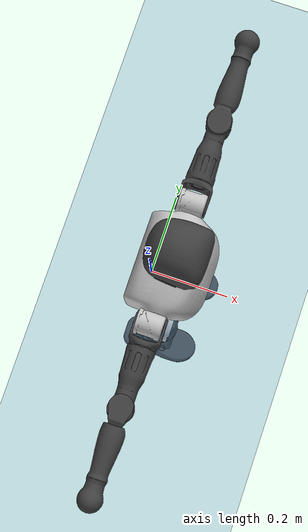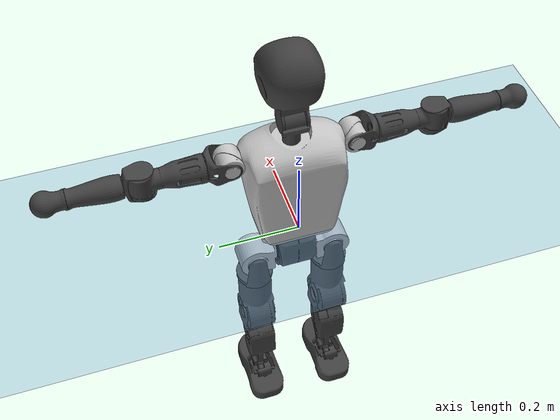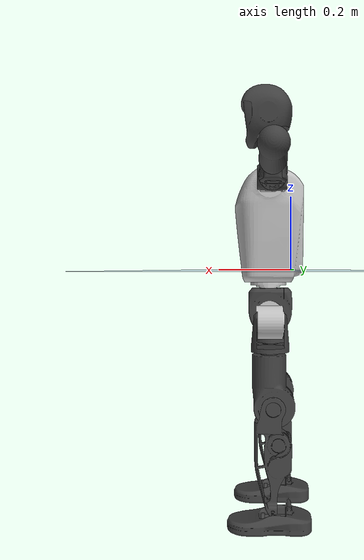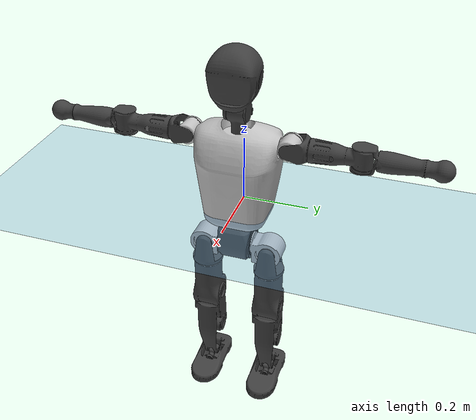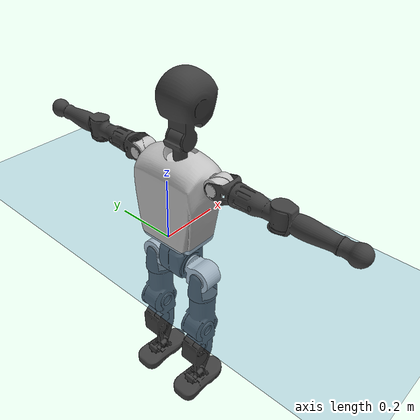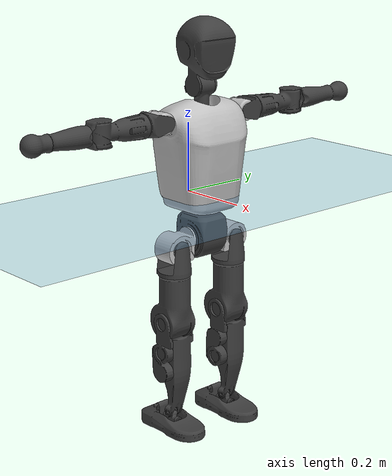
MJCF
<mujoco model="T1">
  <compiler angle="radian" assetdir="assets" balanceinertia="true" inertiafromgeom="false"/>

  <option timestep="0.005" density="1.2" viscosity="2e-05"/>

  <size nkey="1"/>

  <visual>
    <quality shadowsize="8192"/>
    <map shadowclip="0.5"/>
  </visual>

  <default>
    <default class="/">
      <joint armature="0.01" damping="0.01" frictionloss="0.1"/>
      <geom contype="0" conaffinity="0" group="1" solref="-1000 -80"/>
      <site size="0.01 0.005 0.005" group="5"/>
      <general forcelimited="true" biastype="affine" gainprm="25" biasprm="0 -25 -0.6"/>
      <default class="t1">
        <geom rgba="0.25 0.25 0.25 1"/>
        <default class="visual">
          <geom type="mesh" group="2"/>
        </default>
        <default class="collision">
          <geom group="3"/>
        </default>
        <default class="foot">
          <geom size="0.1115 0.05 0.015" type="box" condim="6" group="4" priority="1" solimp="0.015 1 0.015"/>
        </default>
        <default class="reward_collision_sphere">
          <geom group="5" rgba="1 0 0 1"/>
        </default>
      </default>
    </default>
  </default>

  <asset>
    <texture type="skybox" colorspace="auto" name="//unnamed_texture_0" builtin="gradient" rgb1="0.95 0.95 0.95" rgb2="0.95 0.95 0.95" width="100" height="600"/>
    <texture type="2d" colorspace="auto" name="texplane" builtin="checker" rgb1="0.345 0.575 0.748" rgb2="0.345 0.575 0.748" markrgb="1 1 1" width="512" height="512"/>
    <material name="MatPlane" class="/" texture="texplane" texuniform="true" texrepeat="2 2" specular="0.9"/>
    <mesh name="Trunk" class="/" file="Trunk.stl"/>
    <mesh name="H1" class="/" file="H1.stl"/>
    <mesh name="H2" class="/" file="H2.stl"/>
    <mesh name="AL1" class="/" file="AL1.stl"/>
    <mesh name="AL2" class="/" file="AL2.stl"/>
    <mesh name="AL3" class="/" file="AL3.stl"/>
    <mesh name="left_hand_link" class="/" file="left_hand_link.stl"/>
    <mesh name="AR1" class="/" file="AR1.stl"/>
    <mesh name="AR2" class="/" file="AR2.stl"/>
    <mesh name="AR3" class="/" file="AR3.stl"/>
    <mesh name="right_hand_link" class="/" file="right_hand_link.stl"/>
    <mesh name="Waist" class="/" file="Waist.stl"/>
    <mesh name="Hip_Pitch_Left" class="/" file="Hip_Pitch_Left.stl"/>
    <mesh name="Hip_Roll_Left" class="/" file="Hip_Roll_Left.stl"/>
    <mesh name="Hip_Yaw_Left" class="/" file="Hip_Yaw_Left.stl"/>
    <mesh name="Shank_Left" class="/" file="Shank_Left.stl"/>
    <mesh name="Ankle_Cross_Left" class="/" file="Ankle_Cross_Left.stl"/>
    <mesh name="left_foot_link" class="/" file="left_foot_link.stl"/>
    <mesh name="Hip_Pitch_Right" class="/" file="Hip_Pitch_Right.stl"/>
    <mesh name="Hip_Roll_Right" class="/" file="Hip_Roll_Right.stl"/>
    <mesh name="Hip_Yaw_Right" class="/" file="Hip_Yaw_Right.stl"/>
    <mesh name="Shank_Right" class="/" file="Shank_Right.stl"/>
    <mesh name="Ankle_Cross_Right" class="/" file="Ankle_Cross_Right.stl"/>
    <mesh name="right_foot_link" class="/" file="right_foot_link.stl"/>
  </asset>

  <worldbody>
    <geom name="floor" class="/" size="100 100 0.125" type="plane" group="0" material="MatPlane"/>
    <light name="toplight_shadow" class="/" pos="0 0 5" dir="0.0990148 0.0990148 -0.990148" type="directional" ambient="0.04 0.04 0.04" diffuse="0.55 0.55 0.55" specular="0.12 0.12 0.12"/>
    <light name="toplight_fill" class="/" pos="0 0 5" dir="0.0990148 0.0990148 -0.990148" type="directional" castshadow="false" ambient="0.04 0.04 0.04" diffuse="0.3 0.3 0.3" specular="0.08 0.08 0.08"/>
    <body name="trunk" childclass="t1" pos="-8.02803e-05 0.00090746 0.000212724" quat="1 8.79321e-06 2.83287e-05 -3.31027e-05">
      <inertial pos="0.049742 0.000261223 0.108961" quat="0.999955 -0.00013671 -0.00945223 0.0003023" mass="10.5169" diaginertia="0.0566209 0.0617868 0.0674037"/>
      <joint name="//unnamed_joint_0" type="free" armature="0" damping="0" frictionloss="0"/>
      <geom name="//unnamed_geom_1" class="visual" rgba="0.76 0.76 0.76 1" mesh="Trunk"/>
      <geom name="//unnamed_geom_2" class="collision" size="0.0723069 0.0964092 0.144614" pos="0.0540644 0 0.12422" type="box"/>
      <geom name="//unnamed_geom_3" class="reward_collision_sphere" size="0.110871" pos="0.0540644 0 0.103517"/>
      <geom name="//unnamed_geom_4" class="reward_collision_sphere" size="0.0144614" pos="0.0540644 0.0812628 0"/>
      <geom name="//unnamed_geom_5" class="reward_collision_sphere" size="0.0144614" pos="0.0540644 -0.0812628 0"/>
      <geom name="//unnamed_geom_6" class="reward_collision_sphere" size="0.0144614" pos="0.0540644 0.102296 0.186331"/>
      <geom name="//unnamed_geom_7" class="reward_collision_sphere" size="0.0144614" pos="0.0540644 -0.102296 0.186331"/>
      <site name="imu" pos="-0.00034767 4.261e-05 0.000701808" size="0.00964092"/>
      <camera name="track" pos="0 -1.91207 0" quat="0.707107 0.707107 0 0" mode="trackcom"/>
      <camera name="ego_camera" pos="0.109931 0 0.434771" quat="-0.5 -0.5 0.5 0.5"/>
      <body name="H1" pos="0.0550735 -0.000153098 0.249914" quat="1 -4.03879e-05 -1.22223e-05 5.88939e-05">
        <inertial pos="-0.00140918 -0.00188836 0.0593943" quat="0.76386 -0.0142197 0.00125896 0.645224" mass="0.401625" diaginertia="0.000145109 0.000177834 0.000179018"/>
        <joint name="AAHead_yaw" pos="0 0 0" axis="-0.000535639 0.00170883 0.999998" range="-1.57165 1.56872" armature="0.0102876" damping="0.012521" frictionloss="0.101844"/>
        <geom name="//unnamed_geom_8" class="visual" mesh="H1"/>
        <body name="H2" pos="0.000619565 -0.0022895 0.0643767" quat="1 -0.000348696 -0.000222571 0.000227564">
          <inertial pos="0.00665589 -0.000141764 0.100317" quat="0.988528 0.104388 -0.0764064 -0.0779632" mass="0.559381" diaginertia="0.00121917 0.00150496 0.00205724"/>
          <joint name="Head_pitch" pos="0 0 0" axis="0.00371237 -0.999993 0.000202782" range="-1.21503 0.353849" armature="0.00931041" damping="0" frictionloss="0.0989388"/>
          <geom name="//unnamed_geom_9" class="visual" mesh="H2"/>
          <geom name="//unnamed_geom_10" class="collision" size="0.0771274" pos="0.00901073 0 0.113869"/>
          <geom name="//unnamed_geom_11" class="reward_collision_sphere" size="0.0867683" pos="0.0180215 0 0.103517"/>
        </body>
      </body>
      <body name="AL1" pos="0.0528793 0.102098 0.225548" quat="1 0.000664972 -9.94952e-05 -0.000188862">
        <inertial pos="-0.000344661 0.0430622 -0.000106371" quat="0.504323 0.49562 -0.504345 0.495637" mass="0.480037" diaginertia="0.000821473 0.00102316 0.000348346"/>
        <joint name="Left_Shoulder_Pitch" pos="0 0 0" axis="0.00216166 0.999995 0.0021395" stiffness="0.0012701" range="-3.29244 1.25262" armature="0.0096291" damping="0" frictionloss="0.0922137"/>
        <geom name="//unnamed_geom_12" class="visual" rgba="0.76 0.76 0.76 1" mesh="AL1"/>
        <body name="AL2" pos="0.000159383 0.044435 -0.00051787" quat="1 9.40839e-06 -5.47985e-05 1.69582e-05">
          <inertial pos="0.00428101 0.0374192 0.000618947" quat="0.488464 0.511161 -0.486561 0.513202" mass="0.141565" diaginertia="0.000235632 0.000274081 0.00021052"/>
          <joint name="Left_Shoulder_Roll" pos="0 0 0" axis="-0.999998 0.0013942 0.0012998" range="-1.59082 1.73606" armature="0.0103617" damping="0.00661737" frictionloss="0.0961831"/>
          <geom name="//unnamed_geom_13" class="visual" mesh="AL2"/>
          <body name="AL3" pos="7.01749e-06 0.058546 -0.000447063" quat="1 0.00011708 0.000195811 1.77279e-05">
            <inertial pos="0.000560153 0.0801812 -0.0010065" quat="0.7041 0.710097 0.00203624 -0.000294916" mass="0.89649" diaginertia="0.00768184 0.0101668 0.00073393"/>
            <joint name="Left_Elbow_Pitch" pos="0 0 0" axis="-0.00219552 -0.999987 -0.00455019" stiffness="0.00274422" range="-2.30669 2.28907" armature="0.0106443" damping="0.00794035" frictionloss="0.0976903"/>
            <geom name="//unnamed_geom_14" class="visual" mesh="AL3"/>
            <geom name="//unnamed_geom_15" class="collision" size="0.0289228 0.0723069" pos="0 0.0478016 0" quat="0.707105 0.707108 0 0" type="cylinder"/>
            <geom name="//unnamed_geom_16" class="reward_collision_sphere" size="0.0347073"/>
            <body name="left_hand_link" pos="0.000745618 0.141197 0.000994178" quat="1 6.00661e-05 -0.000535488 -0.000514337">
              <inertial pos="-0.00161222 0.103845 0.000162955" quat="0.707271 0.706942 -6.32696e-05 0.000425043" mass="0.294167" diaginertia="0.00479433 0.00642648 0.000259427"/>
              <joint name="Left_Elbow_Yaw" pos="0 0 0" axis="0.00401116 0.000671331 0.999992" stiffness="2.76387e-05" range="-2.44235 -0.0322961" armature="0.00940645" damping="0.00808658" frictionloss="0.0949114"/>
              <geom name="//unnamed_geom_17" class="visual" mesh="left_hand_link"/>
              <geom name="//unnamed_geom_18" class="collision" size="0.0289228 0.084358" pos="0 0.124284 0" quat="0.707105 0.707108 0 0" type="cylinder"/>
              <geom name="//unnamed_geom_19" class="reward_collision_sphere" size="0.0482046"/>
              <geom name="//unnamed_geom_20" class="reward_collision_sphere" size="0.0337432" pos="0 0.105164 0"/>
              <geom name="//unnamed_geom_21" class="reward_collision_sphere" size="0.0337432" pos="0 0.205547 0"/>
            </body>
          </body>
        </body>
      </body>
      <body name="AR1" pos="0.0504217 -0.101639 0.22647" quat="1 -0.000338732 0.000604642 0.000365909">
        <inertial pos="-0.000539613 -0.0452839 -9.485e-05" quat="0.502451 0.494742 -0.505025 0.497717" mass="0.466512" diaginertia="0.000814036 0.00102259 0.00034051"/>
        <joint name="Right_Shoulder_Pitch" pos="0 0 0" axis="-0.00626218 -0.999974 -0.00351802" range="-1.22853 3.3271" armature="0.0100293" damping="0.012341" frictionloss="0.101022"/>
        <geom name="//unnamed_geom_22" class="visual" rgba="0.76 0.76 0.76 1" mesh="AR1"/>
        <body name="AR2" pos="0.00107774 -0.0442011 0.00065943" quat="1 0.000145779 -0.000700398 -0.000212941">
          <inertial pos="0.00394474 -0.0360747 0.000769827" quat="0.513791 0.48707 -0.514065 0.484271" mass="0.141141" diaginertia="0.000238273 0.000279805 0.000210054"/>
          <joint name="Right_Shoulder_Roll" pos="0 0 0" axis="-0.999974 0.00721742 -0.000918215" range="-1.75847 1.55352" armature="0.00967347" damping="0.00336344" frictionloss="0.105964"/>
          <geom name="//unnamed_geom_23" class="visual" mesh="AR2"/>
          <body name="AR3" pos="-0.00094739 -0.059054 -0.00220359" quat="1 -6.83887e-05 3.54897e-05 2.9733e-05">
            <inertial pos="-0.000299166 -0.0828854 0.000974793" quat="0.706287 0.707915 -0.000587315 0.00380253" mass="0.915599" diaginertia="0.00767212 0.0102706 0.000748445"/>
            <joint name="Right_Elbow_Pitch" pos="0 0 0" axis="-0.00192282 0.999991 0.00365616" range="-2.2909 2.28185" armature="0.00900188" damping="0.0104345" frictionloss="0.0944271"/>
            <geom name="//unnamed_geom_24" class="visual" mesh="AR3"/>
            <geom name="//unnamed_geom_25" class="collision" size="0.0289228 0.0723069" pos="0 -0.0478016 0" quat="0.707105 0.707108 0 0" type="cylinder"/>
            <geom name="//unnamed_geom_26" class="reward_collision_sphere" size="0.0347073"/>
            <body name="right_hand_link" pos="-0.000231361 -0.140385 0.000226176" quat="1 -7.39398e-05 -7.11442e-05 -7.80519e-05">
              <inertial pos="-0.000140081 -0.103607 0.00241336" quat="0.706352 0.70786 0.000266943 4.35874e-05" mass="0.295324" diaginertia="0.0048765 0.00659046 0.000258813"/>
              <joint name="Right_Elbow_Yaw" pos="0 0 0" axis="-0.00401134 0.00270303 0.999988" stiffness="0.000829572" range="0.00020787 2.42934" armature="0.0101304" damping="0" frictionloss="0.0965636"/>
              <geom name="//unnamed_geom_27" class="visual" mesh="right_hand_link"/>
              <geom name="//unnamed_geom_28" class="collision" size="0.0289228 0.084358" pos="0 -0.124284 0" quat="0.707105 0.707108 0 0" type="cylinder"/>
              <geom name="//unnamed_geom_29" class="reward_collision_sphere" size="0.0482046"/>
              <geom name="//unnamed_geom_30" class="reward_collision_sphere" size="0.0337432" pos="0 -0.105164 0"/>
              <geom name="//unnamed_geom_31" class="reward_collision_sphere" size="0.0337432" pos="0 -0.205547 0"/>
            </body>
          </body>
        </body>
      </body>
      <body name="Waist" pos="0.0570759 -0.00181352 -0.117594" quat="1 0.000159337 -0.000397503 0.000219263">
        <inertial pos="0.00106227 -0.000293217 0.00799759" quat="0.984116 0.000126361 -0.177402 0.00670611" mass="2.2546" diaginertia="0.0031311 0.00411331 0.00548698"/>
        <joint name="Waist" pos="0 0 0" axis="-0.00594712 0.000888892 0.999982" range="-1.56456 1.54965" armature="0.00956034" damping="0.00968822" frictionloss="0.100637"/>
        <geom name="//unnamed_geom_32" class="visual" mesh="Waist"/>
        <body name="Hip_Pitch_Left" pos="0.00179593 0.100575 -0.000210705" quat="1 0.000661981 -4.71476e-05 0.00017986">
          <inertial pos="0.000675629 -0.00647088 -0.0188995" quat="0.975169 0.22097 0.0146541 0.00195004" mass="0.906824" diaginertia="0.00107687 0.00118861 0.00147622"/>
          <joint name="Left_Hip_Pitch" pos="0 0 0" axis="-0.00394515 0.999926 -0.0114824" range="-1.79444 1.60309" armature="0.00928175" damping="0.00478425" frictionloss="0.0978816"/>
          <geom name="//unnamed_geom_33" class="visual" rgba="0.76 0.76 0.76 1" mesh="Hip_Pitch_Left"/>
          <body name="Hip_Roll_Left" pos="0.00116632 0.00194377 -0.0205936" quat="0.999999 0.000807723 -0.000814551 0.000176531">
            <inertial pos="0.000710033 -0.00010273 -0.0553304" quat="0.708155 -0.00522809 -0.00909507 0.705979" mass="0.337085" diaginertia="0.00102749 0.00118406 0.000598877"/>
            <joint name="Left_Hip_Roll" pos="0 0 0" axis="-0.999981 -0.00601353 -0.00095704" range="-1.58831 0.209597" armature="0.0101073" damping="0.00801383" frictionloss="0.0954136"/>
            <geom name="//unnamed_geom_34" class="visual" mesh="Hip_Roll_Left"/>
            <geom name="//unnamed_geom_35" class="reward_collision_sphere" size="0.0530251"/>
            <body name="Hip_Yaw_Left" pos="-2.83313e-05 0.000119429 -0.0842962" quat="1 3.25408e-05 0.000190101 0.000258501">
              <inertial pos="-0.005958 -0.000674609 -0.0922226" quat="0.692189 -0.0367373 -0.0350828 0.719926" mass="1.93583" diaginertia="0.0151466 0.0197914 0.00303435"/>
              <joint name="Left_Hip_Yaw" pos="0 0 0" axis="2.44317e-05 -7.94817e-05 -1" stiffness="0.000829655" range="-1.00931 1.01137" armature="0.00966154" damping="0.00459077" frictionloss="0.0983211"/>
              <geom name="//unnamed_geom_36" class="visual" mesh="Hip_Yaw_Left"/>
              <geom name="//unnamed_geom_37" class="collision" size="0.0482046 0.0771274" type="cylinder"/>
              <body name="Shank_Left" pos="-0.0108501 -0.000693353 -0.13833" quat="1 -0.000223207 -0.00024049 9.61588e-05">
                <inertial pos="-0.00453358 0.000204856 -0.129134" quat="0.997751 0.00187893 -0.02201 0.0632898" mass="1.52371" diaginertia="0.0204345 0.0274865 0.002157"/>
                <joint name="Left_Knee_Pitch" pos="0 0 0" axis="-0.00376916 0.999989 -0.00292596" range="-0.0164102 2.35834" armature="0.0101826" damping="0.00773189" frictionloss="0.0974571"/>
                <geom name="//unnamed_geom_38" class="visual" mesh="Shank_Left"/>
                <geom name="//unnamed_geom_39" class="collision" size="0.0482046 0.0723069" pos="0 0 -0.12422" type="cylinder"/>
                <geom name="//unnamed_geom_40" class="reward_collision_sphere" size="0.062666"/>
                <body name="Ankle_Cross_Left" pos="-0.00045265 0.000128205 -0.29061" quat="1 0.000602638 0.000185182 0.000118894">
                  <inertial pos="-0.00222144 -0.00167226 -0.00880855" quat="0.442904 0.551299 0.550516 0.443663" mass="0.0655895" diaginertia="1.73286e-05 2.07613e-05 1.3496e-05"/>
                  <joint name="Left_Ankle_Pitch" pos="0 0 0" axis="-6.62512e-05 1 -0.000167563" stiffness="0.00286592" range="-0.862735 0.336219" armature="0.0101859" damping="0.00898444" frictionloss="0.0982615"/>
                  <geom name="//unnamed_geom_41" class="visual" mesh="Ankle_Cross_Left"/>
                  <body name="left_foot_link" pos="-0.000878993 -0.00150888 -0.0121471" quat="1 8.8045e-05 -6.0353e-05 4.64596e-06">
                    <inertial pos="0.000828119 -0.000291219 -0.00749736" quat="-0.000766339 0.621131 -0.000774227 0.783706" mass="0.618261" diaginertia="0.00160526 0.00191739 0.00263597"/>
                    <joint name="Left_Ankle_Roll" pos="0 0 0" axis="-0.999996 0.0015759 -0.00227702" range="-0.43687 0.438346" armature="0.00909502" damping="0.0132592" frictionloss="0.0974979"/>
                    <geom name="//unnamed_geom_42" class="visual" mesh="left_foot_link"/>
                    <geom name="left_foot" class="foot" size="0.112306 0.048639 0.0142843" pos="0.00901073 0 -0.0155275"/>
                    <geom name="//unnamed_geom_44" class="reward_collision_sphere" size="0.0501328" pos="0.00901073 0 -0.0155275"/>
                    <geom name="//unnamed_geom_45" class="reward_collision_sphere" size="0.0289228" pos="0.085602 -0.0219888 -0.0155275"/>
                    <geom name="//unnamed_geom_46" class="reward_collision_sphere" size="0.0289228" pos="-0.0630751 -0.0219888 -0.0155275"/>
                    <site name="left_foot" class="foot" pos="0.00901073 0 -0.0155275" size="0.00964092"/>
                  </body>
                </body>
              </body>
            </body>
          </body>
        </body>
        <body name="Hip_Pitch_Right" pos="-0.00108319 -0.102498 0.000246423" quat="0.999999 -0.000242912 -0.000539151 0.00108401">
          <inertial pos="4.66166e-05 0.00509118 -0.0186222" quat="0.973141 -0.229574 0.015556 -0.00703806" mass="0.892803" diaginertia="0.0010535 0.00114822 0.001473"/>
          <joint name="Right_Hip_Pitch" pos="0 0 0" axis="0.00146531 -0.999998 -0.00103491" range="-1.56995 1.80601" armature="0.0100984" damping="0.0101352" frictionloss="0.1044"/>
          <geom name="//unnamed_geom_47" class="visual" rgba="0.76 0.76 0.76 1" mesh="Hip_Pitch_Right"/>
          <body name="Hip_Roll_Right" pos="-0.000352263 0.00155658 -0.0192542" quat="1 -0.000187987 0.000135191 5.94457e-05">
            <inertial pos="-0.000162806 0.0016511 -0.0571723" quat="0.706194 -0.0043661 -0.00151007 0.708004" mass="0.338671" diaginertia="0.00102012 0.00119855 0.000606199"/>
            <joint name="Right_Hip_Roll" pos="0 0 0" axis="-0.999999 0.000472867 -0.00111919" range="-0.205434 1.57067" armature="0.00917156" damping="0.0107608" frictionloss="0.098937"/>
            <geom name="//unnamed_geom_48" class="visual" mesh="Hip_Roll_Right"/>
            <geom name="//unnamed_geom_49" class="reward_collision_sphere" size="0.0530251"/>
            <body name="Hip_Yaw_Right" pos="-0.000136886 0.000220647 -0.0838679" quat="1 0.000303397 0.000219636 3.27274e-05">
              <inertial pos="-0.00670022 7.46835e-06 -0.0927445" quat="0.714286 -0.0312779 -0.033429 0.698355" mass="1.90582" diaginertia="0.0152958 0.0200424 0.00311548"/>
              <joint name="Right_Hip_Yaw" pos="0 0 0" axis="-0.00253449 0.000604365 -0.999997" stiffness="0.00219039" range="-1.00266 0.990128" armature="0.00865759" damping="0.0115171" frictionloss="0.10314"/>
              <geom name="//unnamed_geom_50" class="visual" mesh="Hip_Yaw_Right"/>
              <geom name="//unnamed_geom_51" class="collision" size="0.0482046 0.0771274" type="cylinder"/>
              <body name="Shank_Right" pos="-0.0139313 0.000890018 -0.138723" quat="1 -6.35646e-05 -0.000660867 -0.000165119">
                <inertial pos="-0.00557676 3.40875e-05 -0.125361" quat="0.999259 -0.000612986 -0.0234912 -0.0304828" mass="1.59512" diaginertia="0.0210545 0.0278139 0.00239484"/>
                <joint name="Right_Knee_Pitch" pos="0 0 0" axis="0.00234345 -0.999956 -0.00904948" range="-2.32766 -0.0176617" armature="0.00945288" damping="0.00802189" frictionloss="0.100873"/>
                <geom name="//unnamed_geom_52" class="visual" mesh="Shank_Right"/>
                <geom name="//unnamed_geom_53" class="collision" size="0.0482046 0.0723069" pos="0 0 -0.12422" type="cylinder"/>
                <geom name="//unnamed_geom_54" class="reward_collision_sphere" size="0.062666"/>
                <body name="Ankle_Cross_Right" pos="-0.00047317 -0.00159067 -0.289908" quat="1 -0.000239747 0.000743223 -0.000624208">
                  <inertial pos="-0.00242749 0.000960066 -0.00801477" quat="0.439672 0.553198 0.55129 0.443553" mass="0.0653214" diaginertia="1.71332e-05 2.04506e-05 1.33556e-05"/>
                  <joint name="Right_Ankle_Pitch" pos="0 0 0" axis="-0.00430656 -0.99999 0.00107395" stiffness="0.00200788" range="-0.365687 0.872726" armature="0.00970113" damping="0.0096974" frictionloss="0.0939772"/>
                  <geom name="//unnamed_geom_55" class="visual" mesh="Ankle_Cross_Right"/>
                  <body name="right_foot_link" pos="-0.000188567 -0.00224561 -0.0114929" quat="1 1.86185e-06 -9.14719e-06 1.00647e-06">
                    <inertial pos="-0.000424885 -0.000845613 -0.0100606" quat="0.000412903 0.619928 -0.000272538 0.784659" mass="0.619208" diaginertia="0.00160828 0.00190572 0.00260439"/>
                    <joint name="Right_Ankle_Roll" pos="0 0 0" axis="-0.999999 -0.00142211 -0.000912757" range="-0.397953 0.434707" armature="0.0100392" damping="0.00907856" frictionloss="0.0968448"/>
                    <geom name="//unnamed_geom_56" class="visual" mesh="right_foot_link"/>
                    <geom name="right_foot" class="foot" size="0.0965088 0.0485634 0.0143285" pos="0.00901073 0 -0.0155275"/>
                    <geom name="//unnamed_geom_58" class="reward_collision_sphere" size="0.0385637"/>
                    <geom name="//unnamed_geom_59" class="reward_collision_sphere" size="0.0289228" pos="0.00901073 0 -0.0155275"/>
                    <geom name="//unnamed_geom_60" class="reward_collision_sphere" size="0.0289228" pos="0.085602 0.0219888 -0.0155275"/>
                    <geom name="//unnamed_geom_61" class="reward_collision_sphere" size="0.0289228" pos="-0.0630751 0.0219888 -0.0155275"/>
                    <site name="right_foot" class="foot" pos="0.00901073 0 -0.0155275" size="0.00964092"/>
                  </body>
                </body>
              </body>
            </body>
          </body>
        </body>
      </body>
    </body>
  </worldbody>

  <contact>
    <pair class="/" geom1="floor" geom2="left_foot" name="//unnamed_contact_0"/>
    <pair class="/" geom1="floor" geom2="right_foot" name="//unnamed_contact_1"/>
  </contact>

  <actuator>
    <general name="AAHead_yaw" class="/" joint="AAHead_yaw" forcerange="-6.92864 6.92864" gainprm="24.1494" biasprm="0 -24.1494 -0.578963"/>
    <general name="Head_pitch" class="/" joint="Head_pitch" forcerange="-6.69817 6.69817" gainprm="24.1494" biasprm="0 -24.1494 -0.578963"/>
    <general name="Left_Shoulder_Pitch" class="/" joint="Left_Shoulder_Pitch" forcerange="-17.0437 17.0437" gainprm="24.1494" biasprm="0 -24.1494 -0.578963"/>
    <general name="Left_Shoulder_Roll" class="/" joint="Left_Shoulder_Roll" forcerange="-17.7503 17.7503" gainprm="24.1494" biasprm="0 -24.1494 -0.578963"/>
    <general name="Left_Elbow_Pitch" class="/" joint="Left_Elbow_Pitch" forcerange="-17.1699 17.1699" gainprm="24.1494" biasprm="0 -24.1494 -0.578963"/>
    <general name="Left_Elbow_Yaw" class="/" joint="Left_Elbow_Yaw" forcerange="-17.2078 17.2078" gainprm="24.1494" biasprm="0 -24.1494 -0.578963"/>
    <general name="Right_Shoulder_Pitch" class="/" joint="Right_Shoulder_Pitch" forcerange="-17.487 17.487" gainprm="24.1494" biasprm="0 -24.1494 -0.578963"/>
    <general name="Right_Shoulder_Roll" class="/" joint="Right_Shoulder_Roll" forcerange="-17.8684 17.8684" gainprm="24.1494" biasprm="0 -24.1494 -0.578963"/>
    <general name="Right_Elbow_Pitch" class="/" joint="Right_Elbow_Pitch" forcerange="-17.2255 17.2255" gainprm="24.1494" biasprm="0 -24.1494 -0.578963"/>
    <general name="Right_Elbow_Yaw" class="/" joint="Right_Elbow_Yaw" forcerange="-17.4387 17.4387" gainprm="24.1494" biasprm="0 -24.1494 -0.578963"/>
    <general name="Waist" class="/" joint="Waist" forcerange="-28.2269 28.2269" gainprm="24.1494" biasprm="0 -24.1494 -0.578963"/>
    <general name="Left_Hip_Pitch" class="/" joint="Left_Hip_Pitch" forcerange="-44.4512 44.4512" gainprm="24.1494" biasprm="0 -24.1494 -0.578963"/>
    <general name="Left_Hip_Roll" class="/" joint="Left_Hip_Roll" forcerange="-29.2665 29.2665" gainprm="24.1494" biasprm="0 -24.1494 -0.578963"/>
    <general name="Left_Hip_Yaw" class="/" joint="Left_Hip_Yaw" forcerange="-28.8124 28.8124" gainprm="24.1494" biasprm="0 -24.1494 -0.578963"/>
    <general name="Left_Knee_Pitch" class="/" joint="Left_Knee_Pitch" forcerange="-55.9757 55.9757" gainprm="24.1494" biasprm="0 -24.1494 -0.578963"/>
    <general name="Left_Ankle_Pitch" class="/" joint="Left_Ankle_Pitch" forcerange="-20.6008 20.6008" gainprm="24.1494" biasprm="0 -24.1494 -0.578963"/>
    <general name="Left_Ankle_Roll" class="/" joint="Left_Ankle_Roll" forcerange="-13.3623 13.3623" gainprm="24.1494" biasprm="0 -24.1494 -0.578963"/>
    <general name="Right_Hip_Pitch" class="/" joint="Right_Hip_Pitch" forcerange="-43.1773 43.1773" gainprm="24.1494" biasprm="0 -24.1494 -0.578963"/>
    <general name="Right_Hip_Roll" class="/" joint="Right_Hip_Roll" forcerange="-28.2958 28.2958" gainprm="24.1494" biasprm="0 -24.1494 -0.578963"/>
    <general name="Right_Hip_Yaw" class="/" joint="Right_Hip_Yaw" forcerange="-30.5583 30.5583" gainprm="24.1494" biasprm="0 -24.1494 -0.578963"/>
    <general name="Right_Knee_Pitch" class="/" joint="Right_Knee_Pitch" forcerange="-56.7884 56.7884" gainprm="24.1494" biasprm="0 -24.1494 -0.578963"/>
    <general name="Right_Ankle_Pitch" class="/" joint="Right_Ankle_Pitch" forcerange="-19.1901 19.1901" gainprm="24.1494" biasprm="0 -24.1494 -0.578963"/>
    <general name="Right_Ankle_Roll" class="/" joint="Right_Ankle_Roll" forcerange="-14.3671 14.3671" gainprm="24.1494" biasprm="0 -24.1494 -0.578963"/>
  </actuator>

  <sensor>
    <gyro site="imu" name="imu_angular_velocity"/>
    <velocimeter site="imu" name="imu_linear_velocity"/>
    <framelinvel objtype="site" objname="left_foot" name="left_foot_global_linear_velocity"/>
    <framelinvel objtype="site" objname="right_foot" name="right_foot_global_linear_velocity"/>
  </sensor>

  <keyframe>
    <key name="home" qpos="0 0 0.6385 1 0 0 0 0 0 0 1.4 0 -0.4 0 -1.4 0 0.4 0 -0.4 0 0 0.8 -0.4 0 0.4 0 0 -0.8 0.4 0"/>
  </keyframe>
</mujoco>
